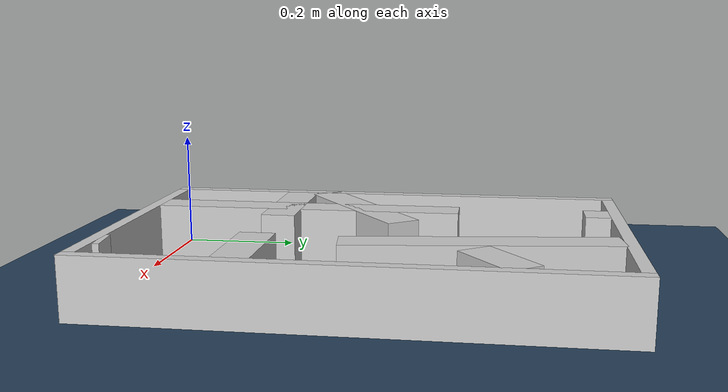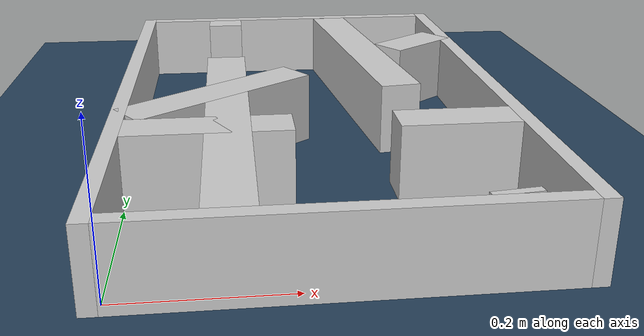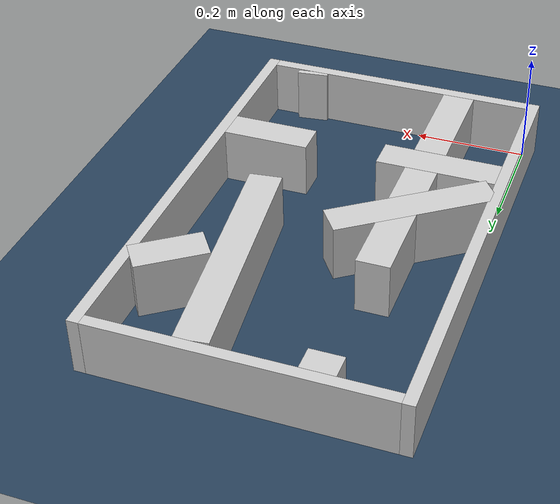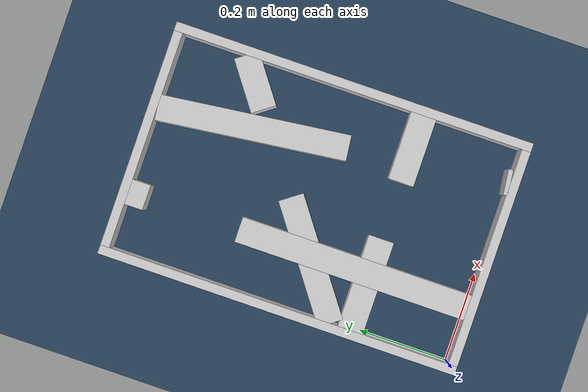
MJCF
<?xml version="1.0" ?>
<mujoco model="generated_real_template">
  <compiler angle="degree"/>
  <option timestep="0.002" integrator="implicitfast" iterations="100" cone="elliptic"/>
  <default>
    <geom density="1"/>
  </default>
  <asset>
    <texture builtin="gradient" height="3072" rgb1="0.3 0.5 0.7" rgb2="0 0 0" type="skybox" width="512"/>
    <texture builtin="checker" height="300" mark="edge" markrgb="0.8 0.8 0.8" name="groundplane" rgb1="0.2 0.3 0.4" rgb2="0.1 0.2 0.3" type="2d" width="300"/>
    <material name="groundplane" reflectance="0.2" texrepeat="5 5" texture="groundplane" texuniform="true"/>
  </asset>
  <worldbody>
    <light dir="0 0 -1" directional="true" pos="0 0 1.5"/>
    <geom name="floor" type="plane" condim="4" friction="0.5 0.005 0.001" material="groundplane" size="0 0 0.05"/>
    <body name="walls">
      <geom name="wall_boundary_left" type="box" condim="4" friction="1.0 0.005 0.0001" rgba="0.8 0.8 0.8 1" pos="-0.010000 0.387500 0.050000" euler="0 0 0.000000" size="0.010000 0.407500 0.050000"/>
      <geom name="wall_boundary_right" type="box" condim="4" friction="1.0 0.005 0.0001" rgba="0.8 0.8 0.8 1" pos="0.500000 0.387500 0.050000" euler="0 0 0.000000" size="0.010000 0.407500 0.050000"/>
      <geom name="wall_boundary_bottom" type="box" condim="4" friction="1.0 0.005 0.0001" rgba="0.8 0.8 0.8 1" pos="0.245000 -0.010000 0.050000" euler="0 0 0.000000" size="0.245000 0.010000 0.050000"/>
      <geom name="wall_boundary_top" type="box" condim="4" friction="1.0 0.005 0.0001" rgba="0.8 0.8 0.8 1" pos="0.245000 0.785000 0.050000" euler="0 0 0.000000" size="0.245000 0.010000 0.050000"/>
      <geom name="wall_inner_1_1" type="box" condim="4" friction="1.0 0.005 0.0001" rgba="0.8 0.8 0.8 1" pos="0.128043 0.261554 0.050000" euler="0 0 90.000000" size="0.261554 0.028500 0.050000"/>
      <geom name="wall_inner_1_2" type="box" condim="4" friction="1.0 0.005 0.0001" rgba="0.8 0.8 0.8 1" pos="0.128043 0.754321 0.050000" euler="0 0 90.000000" size="0.020679 0.028500 0.050000"/>
      <geom name="wall_inner_2_1" type="box" condim="4" friction="1.0 0.005 0.0001" rgba="0.8 0.8 0.8 1" pos="0.440430 0.592701 0.050000" euler="0 0 -143.767828" size="0.061453 0.028500 0.050000"/>
      <geom name="wall_inner_2_2" type="box" condim="4" friction="1.0 0.005 0.0001" rgba="0.8 0.8 0.8 1" pos="0.115274 0.354442 0.050000" euler="0 0 -143.767828" size="0.142909 0.028500 0.050000"/>
      <geom name="wall_inner_3_1" type="box" condim="4" friction="1.0 0.005 0.0001" rgba="0.8 0.8 0.8 1" pos="0.104300 0.224393 0.050000" euler="0 0 0.000000" size="0.104300 0.028500 0.050000"/>
      <geom name="wall_inner_3_2" type="box" condim="4" friction="1.0 0.005 0.0001" rgba="0.8 0.8 0.8 1" pos="0.413586 0.224393 0.050000" euler="0 0 0.000000" size="0.076414 0.028500 0.050000"/>
      <geom name="wall_inner_4_1" type="box" condim="4" friction="1.0 0.005 0.0001" rgba="0.8 0.8 0.8 1" pos="0.346025 0.564912 0.050000" euler="0 0 -83.177840" size="0.211586 0.028500 0.050000"/>
      <geom name="wall_inner_4_2" type="box" condim="4" friction="1.0 0.005 0.0001" rgba="0.8 0.8 0.8 1" pos="0.413000 0.005085 0.050000" euler="0 0 -83.177840" size="0.005122 0.028500 0.050000"/>
    </body>
  </worldbody>
</mujoco>
